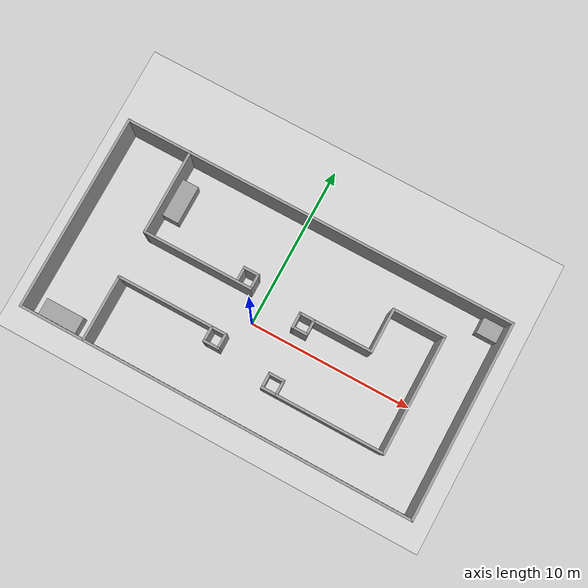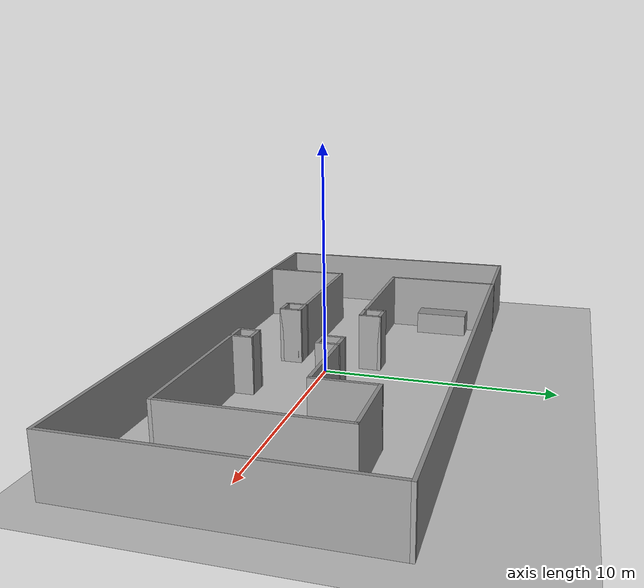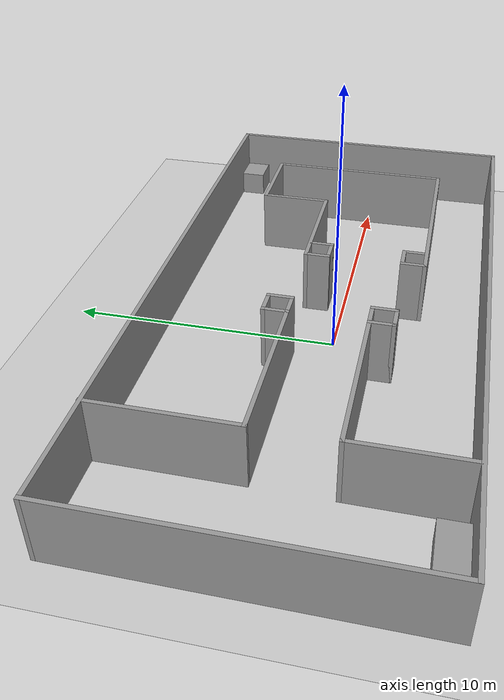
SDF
<sdf version="1.6">
 <world name="default">
  <light name="sun" type="directional">
   <pose>0 0 10 0 -0 0</pose>
   <diffuse>0.8 0.8 0.8 1</diffuse>
   <specular>0.2 0.2 0.2 1</specular>
   <attenuation>
    <range>1000</range>
    <constant>0.9</constant>
    <linear>0.01</linear>
    <quadratic>0.001</quadratic>
   </attenuation>
   <direction>-0.5 0.1 -0.9</direction>
  </light>
  <model name="ground_plane">
   <static>1</static>
   <link name="link">
    <collision name="collision">
     <geometry><plane><normal>0 0 1</normal><size>100 100</size></plane></geometry>
     <surface>
      <contact><collide_bitmask>65535</collide_bitmask></contact>
      <friction><ode><mu>100</mu><mu2>50</mu2></ode></friction>
     </surface>
    </collision>
    <visual name="visual">
     <cast_shadows>0</cast_shadows>
     <geometry><plane><normal>0 0 1</normal><size>100 100</size></plane></geometry>
     <material>
      <script><uri>file://media/materials/scripts/gazebo.material</uri><name>Gazebo/Grey</name></script>
     </material>
    </visual>
   </link>
  </model>
  <gravity>0 0 -9.8</gravity>
  <magnetic_field>6e-06 2.3e-05 -4.2e-05</magnetic_field>
  <atmosphere type="adiabatic"/>
  <physics name="default_physics" default="0" type="ode">
   <max_step_size>0.001</max_step_size>
   <real_time_factor>1</real_time_factor>
   <real_time_update_rate>1000</real_time_update_rate>
  </physics>
  <scene><ambient>0.4 0.4 0.4 1</ambient><background>0.7 0.7 0.7 1</background><shadows>1</shadows></scene>
  <spherical_coordinates>
   <surface_model>EARTH_WGS84</surface_model>
   <latitude_deg>0</latitude_deg>
   <longitude_deg>0</longitude_deg>
   <elevation>0</elevation>
   <heading_deg>0</heading_deg>
  </spherical_coordinates>
  <model name="nav_demo">
   <pose>0.6292 0.567005 0 0 -0 0</pose>
   <link name="Wall_28">
    <collision name="Wall_28_Collision">
     <geometry><box><size>12 0.15 2.5</size></box></geometry>
     <pose>0 0 1.25 0 -0 0</pose>
    </collision>
    <visual name="Wall_28_Visual">
     <pose>0 0 1.25 0 -0 0</pose>
     <geometry><box><size>12 0.15 2.5</size></box></geometry>
     <material>
      <script><uri>file://media/materials/scripts/gazebo.material</uri><name>Gazebo/Grey</name></script>
      <ambient>1 1 1 1</ambient>
     </material>
     <meta><layer>0</layer></meta>
    </visual>
    <pose>-11.925 -0.008745 0 0 -0 -1.5708</pose>
   </link>
   <link name="Wall_29">
    <collision name="Wall_29_Collision">
     <geometry><box><size>24 0.15 2.5</size></box></geometry>
     <pose>0 0 1.25 0 -0 0</pose>
    </collision>
    <visual name="Wall_29_Visual">
     <pose>0 0 1.25 0 -0 0</pose>
     <geometry><box><size>24 0.15 2.5</size></box></geometry>
     <material>
      <script><uri>file://media/materials/scripts/gazebo.material</uri><name>Gazebo/Grey</name></script>
      <ambient>1 1 1 1</ambient>
     </material>
     <meta><layer>0</layer></meta>
    </visual>
    <pose>-0 -5.93375 0 0 -0 0</pose>
   </link>
   <link name="Wall_30">
    <collision name="Wall_30_Collision">
     <geometry><box><size>12 0.15 2.5</size></box></geometry>
     <pose>0 0 1.25 0 -0 0</pose>
    </collision>
    <visual name="Wall_30_Visual">
     <pose>0 0 1.25 0 -0 0</pose>
     <geometry><box><size>12 0.15 2.5</size></box></geometry>
     <material>
      <script><uri>file://media/materials/scripts/gazebo.material</uri><name>Gazebo/Grey</name></script>
      <ambient>1 1 1 1</ambient>
     </material>
     <meta><layer>0</layer></meta>
    </visual>
    <pose>11.925 -0.008745 0 0 -0 1.5708</pose>
   </link>
   <link name="Wall_31">
    <collision name="Wall_31_Collision">
     <geometry><box><size>24 0.15 2.5</size></box></geometry>
     <pose>0 0 1.25 0 -0 0</pose>
    </collision>
    <visual name="Wall_31_Visual">
     <pose>0 0 1.25 0 -0 0</pose>
     <geometry><box><size>24 0.15 2.5</size></box></geometry>
     <material>
      <script><uri>file://media/materials/scripts/gazebo.material</uri><name>Gazebo/Grey</name></script>
      <ambient>1 1 1 1</ambient>
     </material>
     <meta><layer>0</layer></meta>
    </visual>
    <pose>-0 5.91625 0 0 -0 3.14159</pose>
   </link>
   <link name="Wall_33">
    <collision name="Wall_33_Collision">
     <geometry><box><size>5.25 0.15 2.5</size></box></geometry>
     <pose>0 0 1.25 0 -0 0</pose>
    </collision>
    <visual name="Wall_33_Visual">
     <pose>0 0 1.25 0 -0 0</pose>
     <geometry><box><size>5.25 0.15 2.5</size></box></geometry>
     <material>
      <script><uri>file://media/materials/scripts/gazebo.material</uri><name>Gazebo/Grey</name></script>
      <ambient>1 1 1 1</ambient>
     </material>
     <meta><layer>0</layer></meta>
    </visual>
    <pose>-8.04221 3.38374 0 0 -0 -1.5708</pose>
   </link>
   <link name="Wall_34">
    <collision name="Wall_34_Collision">
     <geometry><box><size>6.75 0.15 2.5</size></box></geometry>
     <pose>0 0 1.25 0 -0 0</pose>
    </collision>
    <visual name="Wall_34_Visual">
     <pose>0 0 1.25 0 -0 0</pose>
     <geometry><box><size>6.75 0.15 2.5</size></box></geometry>
     <material>
      <script><uri>file://media/materials/scripts/gazebo.material</uri><name>Gazebo/Grey</name></script>
      <ambient>1 1 1 1</ambient>
     </material>
     <meta><layer>0</layer></meta>
    </visual>
    <pose>-4.74221 0.833745 0 0 -0 0</pose>
   </link>
   <link name="Wall_36">
    <collision name="Wall_36_Collision">
     <geometry><box><size>6.75 0.15 2.5</size></box></geometry>
     <pose>0 0 1.25 0 -0 0</pose>
    </collision>
    <visual name="Wall_36_Visual">
     <pose>0 0 1.25 0 -0 0</pose>
     <geometry><box><size>6.75 0.15 2.5</size></box></geometry>
     <material>
      <script><uri>file://media/materials/scripts/gazebo.material</uri><name>Gazebo/Grey</name></script>
      <ambient>1 1 1 1</ambient>
     </material>
     <meta><layer>0</layer></meta>
    </visual>
    <pose>-4.73096 -2.00674 0 0 -0 3.14159</pose>
   </link>
   <link name="Wall_37">
    <collision name="Wall_37_Collision">
     <geometry><box><size>4 0.15 2.5</size></box></geometry>
     <pose>0 0 1.25 0 -0 0</pose>
    </collision>
    <visual name="Wall_37_Visual">
     <pose>0 0 1.25 0 -0 0</pose>
     <geometry><box><size>4 0.15 2.5</size></box></geometry>
     <material>
      <script><uri>file://media/materials/scripts/gazebo.material</uri><name>Gazebo/Grey</name></script>
      <ambient>1 1 1 1</ambient>
     </material>
     <meta><layer>0</layer></meta>
    </visual>
    <pose>-8.03096 -3.93174 0 0 -0 -1.5708</pose>
   </link>
   <link name="Wall_39">
    <collision name="Wall_39_Collision">
     <geometry><box><size>1 0.15 2.5</size></box></geometry>
     <pose>0 0 1.25 0 -0 0</pose>
    </collision>
    <visual name="Wall_39_Visual">
     <pose>0 0 1.25 0 -0 0</pose>
     <geometry><box><size>1 0.15 2.5</size></box></geometry>
     <material>
      <script><uri>file://media/materials/scripts/gazebo.material</uri><name>Gazebo/Grey</name></script>
      <ambient>1 1 1 1</ambient>
     </material>
     <meta><layer>0</layer></meta>
    </visual>
    <pose>-1.44221 1.25875 0 0 -0 1.5708</pose>
   </link>
   <link name="Wall_40">
    <collision name="Wall_40_Collision">
     <geometry><box><size>1 0.15 2.5</size></box></geometry>
     <pose>0 0 1.25 0 -0 0</pose>
    </collision>
    <visual name="Wall_40_Visual">
     <pose>0 0 1.25 0 -0 0</pose>
     <geometry><box><size>1 0.15 2.5</size></box></geometry>
     <material>
      <script><uri>file://media/materials/scripts/gazebo.material</uri><name>Gazebo/Grey</name></script>
      <ambient>1 1 1 1</ambient>
     </material>
     <meta><layer>0</layer></meta>
    </visual>
    <pose>-1.86721 1.68375 0 0 -0 3.14159</pose>
   </link>
   <link name="Wall_41">
    <collision name="Wall_41_Collision">
     <geometry><box><size>1 0.15 2.5</size></box></geometry>
     <pose>0 0 1.25 0 -0 0</pose>
    </collision>
    <visual name="Wall_41_Visual">
     <pose>0 0 1.25 0 -0 0</pose>
     <geometry><box><size>1 0.15 2.5</size></box></geometry>
     <material>
      <script><uri>file://media/materials/scripts/gazebo.material</uri><name>Gazebo/Grey</name></script>
      <ambient>1 1 1 1</ambient>
     </material>
     <meta><layer>0</layer></meta>
    </visual>
    <pose>-2.29221 1.25875 0 0 -0 -1.5708</pose>
   </link>
   <link name="Wall_43">
    <collision name="Wall_43_Collision">
     <geometry><box><size>4.5 0.15 2.5</size></box></geometry>
     <pose>0 0 1.25 0 -0 0</pose>
    </collision>
    <visual name="Wall_43_Visual">
     <pose>0 0 1.25 0 -0 0</pose>
     <geometry><box><size>4.5 0.15 2.5</size></box></geometry>
     <material>
      <script><uri>file://media/materials/scripts/gazebo.material</uri><name>Gazebo/Grey</name></script>
      <ambient>1 1 1 1</ambient>
     </material>
     <meta><layer>0</layer></meta>
    </visual>
    <pose>3.73484 0.931587 0 0 -0 0</pose>
   </link>
   <link name="Wall_44">
    <collision name="Wall_44_Collision">
     <geometry><box><size>2.75 0.15 2.5</size></box></geometry>
     <pose>0 0 1.25 0 -0 0</pose>
    </collision>
    <visual name="Wall_44_Visual">
     <pose>0 0 1.25 0 -0 0</pose>
     <geometry><box><size>2.75 0.15 2.5</size></box></geometry>
     <material>
      <script><uri>file://media/materials/scripts/gazebo.material</uri><name>Gazebo/Grey</name></script>
      <ambient>1 1 1 1</ambient>
     </material>
     <meta><layer>0</layer></meta>
    </visual>
    <pose>5.90984 2.23159 0 0 -0 1.5708</pose>
   </link>
   <link name="Wall_45">
    <collision name="Wall_45_Collision">
     <geometry><box><size>3.25 0.15 2.5</size></box></geometry>
     <pose>0 0 1.25 0 -0 0</pose>
    </collision>
    <visual name="Wall_45_Visual">
     <pose>0 0 1.25 0 -0 0</pose>
     <geometry><box><size>3.25 0.15 2.5</size></box></geometry>
     <material>
      <script><uri>file://media/materials/scripts/gazebo.material</uri><name>Gazebo/Grey</name></script>
      <ambient>1 1 1 1</ambient>
     </material>
     <meta><layer>0</layer></meta>
    </visual>
    <pose>7.45984 3.53159 0 0 -0 0</pose>
   </link>
   <link name="Wall_46">
    <collision name="Wall_46_Collision">
     <geometry><box><size>7.25 0.15 2.5</size></box></geometry>
     <pose>0 0 1.25 0 -0 0</pose>
    </collision>
    <visual name="Wall_46_Visual">
     <pose>0 0 1.25 0 -0 0</pose>
     <geometry><box><size>7.25 0.15 2.5</size></box></geometry>
     <material>
      <script><uri>file://media/materials/scripts/gazebo.material</uri><name>Gazebo/Grey</name></script>
      <ambient>1 1 1 1</ambient>
     </material>
     <meta><layer>0</layer></meta>
    </visual>
    <pose>9.00984 -0.018413 0 0 -0 -1.5708</pose>
   </link>
   <link name="Wall_47">
    <collision name="Wall_47_Collision">
     <geometry><box><size>7.5 0.15 2.5</size></box></geometry>
     <pose>0 0 1.25 0 -0 0</pose>
    </collision>
    <visual name="Wall_47_Visual">
     <pose>0 0 1.25 0 -0 0</pose>
     <geometry><box><size>7.5 0.15 2.5</size></box></geometry>
     <material>
      <script><uri>file://media/materials/scripts/gazebo.material</uri><name>Gazebo/Grey</name></script>
      <ambient>1 1 1 1</ambient>
     </material>
     <meta><layer>0</layer></meta>
    </visual>
    <pose>5.33484 -3.56841 0 0 -0 3.14159</pose>
   </link>
   <link name="Wall_49">
    <collision name="Wall_49_Collision">
     <geometry><box><size>1 0.15 2.5</size></box></geometry>
     <pose>0 0 1.25 0 -0 0</pose>
    </collision>
    <visual name="Wall_49_Visual">
     <pose>0 0 1.25 0 -0 0</pose>
     <geometry><box><size>1 0.15 2.5</size></box></geometry>
     <material>
      <script><uri>file://media/materials/scripts/gazebo.material</uri><name>Gazebo/Grey</name></script>
      <ambient>1 1 1 1</ambient>
     </material>
     <meta><layer>0</layer></meta>
    </visual>
    <pose>1.55984 0.506587 0 0 -0 -1.5708</pose>
   </link>
   <link name="Wall_50">
    <collision name="Wall_50_Collision">
     <geometry><box><size>1 0.15 2.5</size></box></geometry>
     <pose>0 0 1.25 0 -0 0</pose>
    </collision>
    <visual name="Wall_50_Visual">
     <pose>0 0 1.25 0 -0 0</pose>
     <geometry><box><size>1 0.15 2.5</size></box></geometry>
     <material>
      <script><uri>file://media/materials/scripts/gazebo.material</uri><name>Gazebo/Grey</name></script>
      <ambient>1 1 1 1</ambient>
     </material>
     <meta><layer>0</layer></meta>
    </visual>
    <pose>1.98484 0.081587 0 0 -0 0</pose>
   </link>
   <link name="Wall_51">
    <collision name="Wall_51_Collision">
     <geometry><box><size>1 0.15 2.5</size></box></geometry>
     <pose>0 0 1.25 0 -0 0</pose>
    </collision>
    <visual name="Wall_51_Visual">
     <pose>0 0 1.25 0 -0 0</pose>
     <geometry><box><size>1 0.15 2.5</size></box></geometry>
     <material>
      <script><uri>file://media/materials/scripts/gazebo.material</uri><name>Gazebo/Grey</name></script>
      <ambient>1 1 1 1</ambient>
     </material>
     <meta><layer>0</layer></meta>
    </visual>
    <pose>2.40984 0.506587 0 0 -0 1.5708</pose>
   </link>
   <link name="Wall_53">
    <collision name="Wall_53_Collision">
     <geometry><box><size>1 0.15 2.5</size></box></geometry>
     <pose>0 0 1.25 0 -0 0</pose>
    </collision>
    <visual name="Wall_53_Visual">
     <pose>0 0 1.25 0 -0 0</pose>
     <geometry><box><size>1 0.15 2.5</size></box></geometry>
     <material>
      <script><uri>file://media/materials/scripts/gazebo.material</uri><name>Gazebo/Grey</name></script>
      <ambient>1 1 1 1</ambient>
     </material>
     <meta><layer>0</layer></meta>
    </visual>
    <pose>1.65984 -3.14341 0 0 -0 1.5708</pose>
   </link>
   <link name="Wall_54">
    <collision name="Wall_54_Collision">
     <geometry><box><size>1 0.15 2.5</size></box></geometry>
     <pose>0 0 1.25 0 -0 0</pose>
    </collision>
    <visual name="Wall_54_Visual">
     <pose>0 0 1.25 0 -0 0</pose>
     <geometry><box><size>1 0.15 2.5</size></box></geometry>
     <material>
      <script><uri>file://media/materials/scripts/gazebo.material</uri><name>Gazebo/Grey</name></script>
      <ambient>1 1 1 1</ambient>
     </material>
     <meta><layer>0</layer></meta>
    </visual>
    <pose>2.08484 -2.71841 0 0 -0 0</pose>
   </link>
   <link name="Wall_55">
    <collision name="Wall_55_Collision">
     <geometry><box><size>1 0.15 2.5</size></box></geometry>
     <pose>0 0 1.25 0 -0 0</pose>
    </collision>
    <visual name="Wall_55_Visual">
     <pose>0 0 1.25 0 -0 0</pose>
     <geometry><box><size>1 0.15 2.5</size></box></geometry>
     <material>
      <script><uri>file://media/materials/scripts/gazebo.material</uri><name>Gazebo/Grey</name></script>
      <ambient>1 1 1 1</ambient>
     </material>
     <meta><layer>0</layer></meta>
    </visual>
    <pose>2.50984 -3.14341 0 0 -0 -1.5708</pose>
   </link>
   <link name="Wall_57">
    <collision name="Wall_57_Collision">
     <geometry><box><size>1 0.15 2.5</size></box></geometry>
     <pose>0 0 1.25 0 -0 0</pose>
    </collision>
    <visual name="Wall_57_Visual">
     <pose>0 0 1.25 0 -0 0</pose>
     <geometry><box><size>1 0.15 2.5</size></box></geometry>
     <material>
      <script><uri>file://media/materials/scripts/gazebo.material</uri><name>Gazebo/Grey</name></script>
      <ambient>1 1 1 1</ambient>
     </material>
     <meta><layer>0</layer></meta>
    </visual>
    <pose>-1.43096 -2.43174 0 0 -0 -1.5708</pose>
   </link>
   <link name="Wall_58">
    <collision name="Wall_58_Collision">
     <geometry><box><size>1 0.15 2.5</size></box></geometry>
     <pose>0 0 1.25 0 -0 0</pose>
    </collision>
    <visual name="Wall_58_Visual">
     <pose>0 0 1.25 0 -0 0</pose>
     <geometry><box><size>1 0.15 2.5</size></box></geometry>
     <material>
      <script><uri>file://media/materials/scripts/gazebo.material</uri><name>Gazebo/Grey</name></script>
      <ambient>1 1 1 1</ambient>
     </material>
     <meta><layer>0</layer></meta>
    </visual>
    <pose>-1.85596 -2.85674 0 0 -0 3.14159</pose>
   </link>
   <link name="Wall_59">
    <collision name="Wall_59_Collision">
     <geometry><box><size>1 0.15 2.5</size></box></geometry>
     <pose>0 0 1.25 0 -0 0</pose>
    </collision>
    <visual name="Wall_59_Visual">
     <pose>0 0 1.25 0 -0 0</pose>
     <geometry><box><size>1 0.15 2.5</size></box></geometry>
     <material>
      <script><uri>file://media/materials/scripts/gazebo.material</uri><name>Gazebo/Grey</name></script>
      <ambient>1 1 1 1</ambient>
     </material>
     <meta><layer>0</layer></meta>
    </visual>
    <pose>-2.28096 -2.43174 0 0 -0 1.5708</pose>
   </link>
   <static>1</static>
  </model>
  <model name="unit_box">
   <static>1</static>
   <pose>-9.48259 -4.79037 0.499995 9e-06 -0 1e-06</pose>
   <link name="link">
    <inertial>
     <mass>1</mass>
     <inertia>
      <ixx>0.166667</ixx>
      <ixy>0</ixy>
      <ixz>0</ixz>
      <iyy>0.166667</iyy>
      <iyz>0</iyz>
      <izz>0.166667</izz>
     </inertia>
    </inertial>
    <collision name="collision"><geometry><box><size>2.3543 1 1</size></box></geometry></collision>
    <visual name="visual">
     <geometry><box><size>2.3543 1 1</size></box></geometry>
     <material>
      <script><name>Gazebo/Grey</name><uri>file://media/materials/scripts/gazebo.material</uri></script>
     </material>
    </visual>
   </link>
  </model>
  <model name="unit_box_clone">
   <static>1</static>
   <pose>11.8609 5.90228 0.5 0 -0 1e-06</pose>
   <link name="link">
    <inertial>
     <mass>1</mass>
     <inertia>
      <ixx>0.166667</ixx>
      <ixy>0</ixy>
      <ixz>0</ixz>
      <iyy>0.166667</iyy>
      <iyz>0</iyz>
      <izz>0.166667</izz>
     </inertia>
    </inertial>
    <collision name="collision"><geometry><box><size>1.2166 1 1</size></box></geometry></collision>
    <visual name="visual">
     <geometry><box><size>1.2166 1 1</size></box></geometry>
     <material>
      <script><name>Gazebo/Grey</name><uri>file://media/materials/scripts/gazebo.material</uri></script>
     </material>
    </visual>
   </link>
  </model>
  <model name="unit_box_0">
   <static>1</static>
   <pose>-6.83674 4.09596 0.5 0 -0 0</pose>
   <link name="link">
    <inertial>
     <mass>1</mass>
     <inertia>
      <ixx>0.166667</ixx>
      <ixy>0</ixy>
      <ixz>0</ixz>
      <iyy>0.166667</iyy>
      <iyz>0</iyz>
      <izz>0.166667</izz>
     </inertia>
    </inertial>
    <collision name="collision"><geometry><box><size>1 2.37534 1</size></box></geometry></collision>
    <visual name="visual">
     <geometry><box><size>1 2.37534 1</size></box></geometry>
     <material>
      <script><name>Gazebo/Grey</name><uri>file://media/materials/scripts/gazebo.material</uri></script>
     </material>
    </visual>
   </link>
  </model>
 </world>
</sdf>
